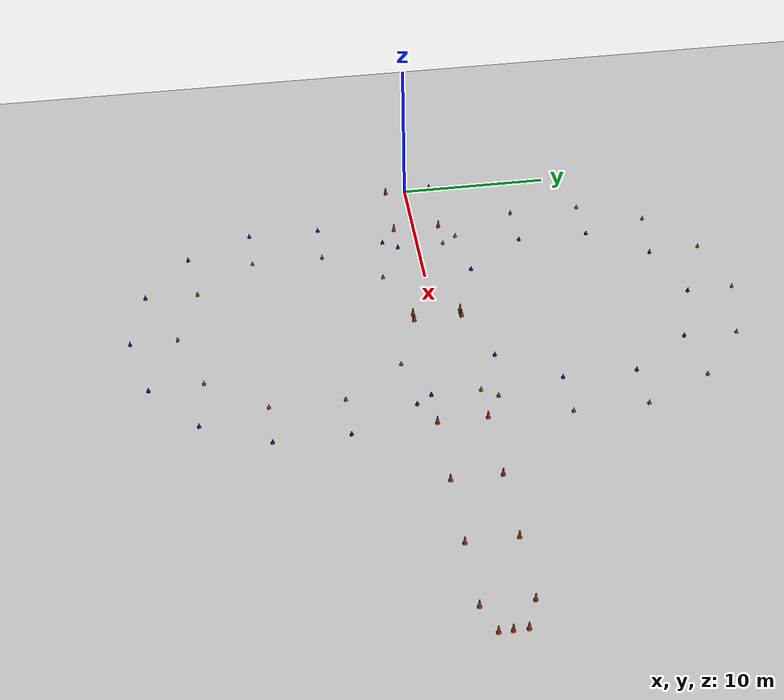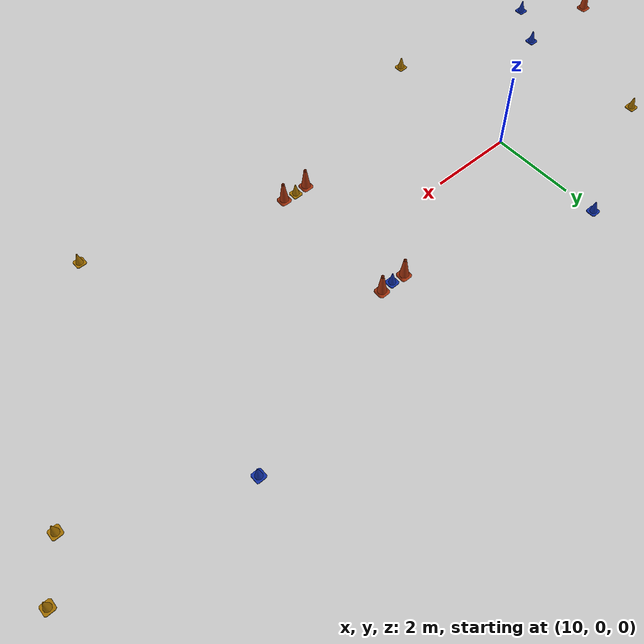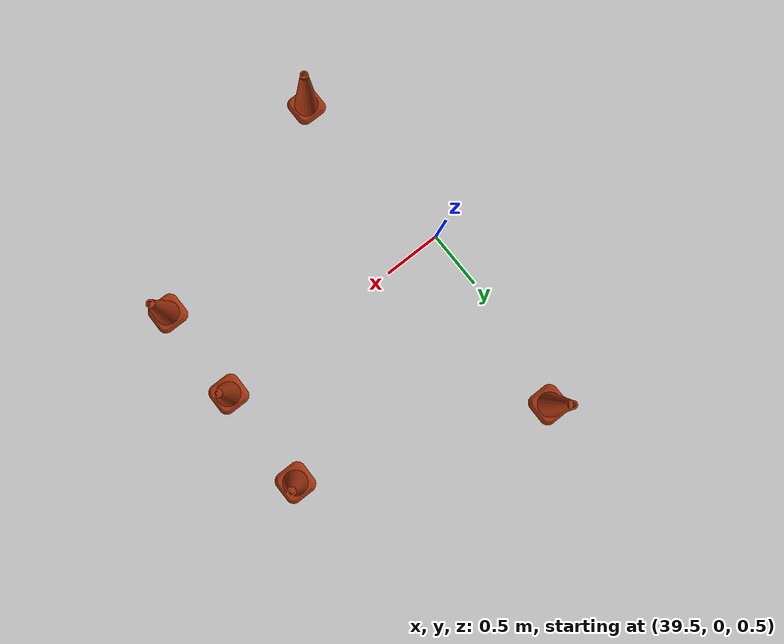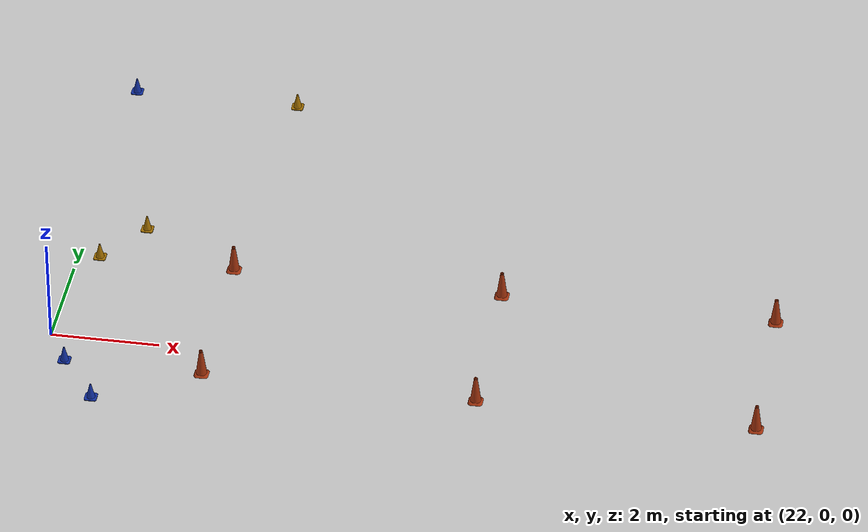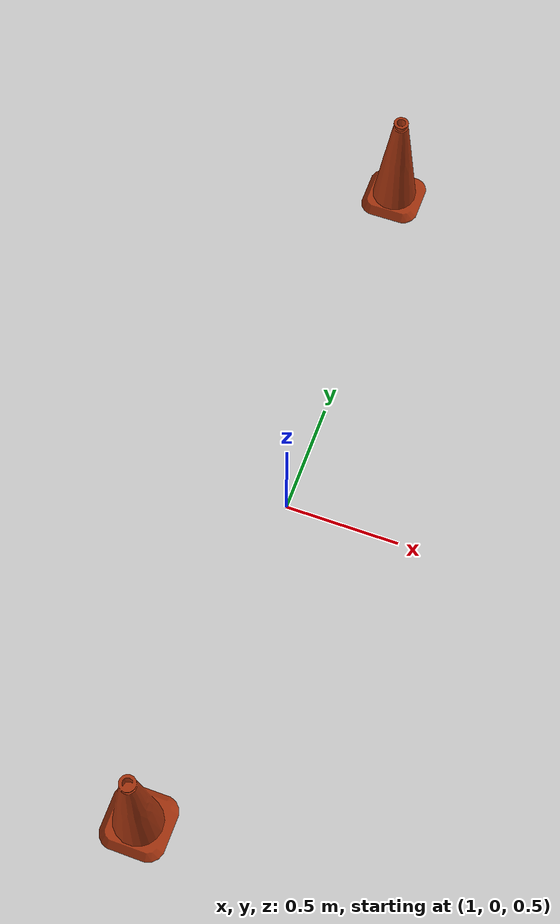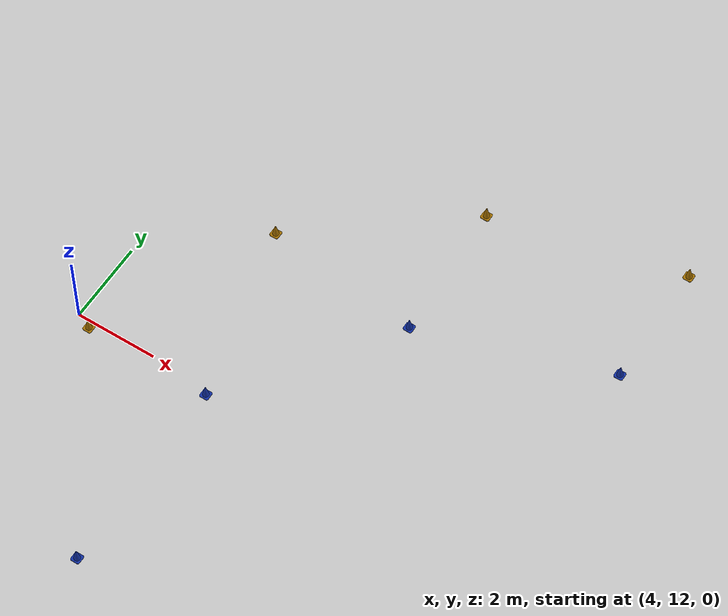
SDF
<?xml version="1.0" ?>
<sdf version="1.6">
  <world name="skidpad_track">
    <scene>
      <sky>
        <clouds>
          <speed>3</speed>
        </clouds>
      </sky>
      <ambient>1.0 1.0 1.0 1.0</ambient>
      <shadows>1</shadows>
    </scene>

    <include>
      <uri>model://ground_plane</uri>
    </include>

    <include>
      <uri>model://sun</uri>
    </include>

    <include>
      <uri>model://models/skidpad_track</uri>
      <name>track</name>
      <pose>0 0 0.5 0 0 0</pose>
    </include>

  </world>
</sdf>

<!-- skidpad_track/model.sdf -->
<sdf version='1.6'>
    <model name='skidpad_track'>

        <include>
            <pose>7.400000 -1.500000 0.15 0 0 0</pose>
            <uri>model://models/blue_cone</uri>
            <name>blue_cone_1</name>

            <covariance x="0.01" y="0.01" xy="0.0"/>

        </include>

        <include>
            <pose>22.600000 -1.500000 0.15 0 0 0</pose>
            <uri>model://models/blue_cone</uri>
            <name>blue_cone_2</name>

            <covariance x="0.01" y="0.01" xy="0.0"/>

        </include>

        <include>
            <pose>15.000000 -19.675000 0.15 0 0 0</pose>
            <uri>model://models/blue_cone</uri>
            <name>blue_cone_3</name>

            <covariance x="0.01" y="0.01" xy="0.0"/>

        </include>

        <include>
            <pose>19.599168 -18.625270 0.15 0 0 0</pose>
            <uri>model://models/blue_cone</uri>
            <name>blue_cone_4</name>

            <covariance x="0.01" y="0.01" xy="0.0"/>

        </include>

        <include>
            <pose>23.287414 -15.683992 0.15 0 0 0</pose>
            <uri>model://models/blue_cone</uri>
            <name>blue_cone_5</name>

            <covariance x="0.01" y="0.01" xy="0.0"/>

        </include>

        <include>
            <pose>25.334236 -11.433722 0.15 0 0 0</pose>
            <uri>model://models/blue_cone</uri>
            <name>blue_cone_6</name>

            <covariance x="0.01" y="0.01" xy="0.0"/>

        </include>

        <include>
            <pose>25.334236 -6.716278 0.15 0 0 0</pose>
            <uri>model://models/blue_cone</uri>
            <name>blue_cone_7</name>

            <covariance x="0.01" y="0.01" xy="0.0"/>

        </include>

        <include>
            <pose>23.287414 -2.466008 0.15 0 0 0</pose>
            <uri>model://models/blue_cone</uri>
            <name>blue_cone_8</name>

            <covariance x="0.01" y="0.01" xy="0.0"/>

        </include>

        <include>
            <pose>6.712586 -2.466008 0.15 0 0 0</pose>
            <uri>model://models/blue_cone</uri>
            <name>blue_cone_9</name>

            <covariance x="0.01" y="0.01" xy="0.0"/>

        </include>

        <include>
            <pose>4.665764 -6.716278 0.15 0 0 0</pose>
            <uri>model://models/blue_cone</uri>
            <name>blue_cone_10</name>

            <covariance x="0.01" y="0.01" xy="0.0"/>

        </include>

        <include>
            <pose>4.665764 -11.433722 0.15 0 0 0</pose>
            <uri>model://models/blue_cone</uri>
            <name>blue_cone_11</name>

            <covariance x="0.01" y="0.01" xy="0.0"/>

        </include>

        <include>
            <pose>6.712586 -15.683992 0.15 0 0 0</pose>
            <uri>model://models/blue_cone</uri>
            <name>blue_cone_12</name>

            <covariance x="0.01" y="0.01" xy="0.0"/>

        </include>

        <include>
            <pose>10.400832 -18.625270 0.15 0 0 0</pose>
            <uri>model://models/blue_cone</uri>
            <name>blue_cone_13</name>

            <covariance x="0.01" y="0.01" xy="0.0"/>

        </include>

        <include>
            <pose>15.000000 16.775000 0.15 0 0 0</pose>
            <uri>model://models/blue_cone</uri>
            <name>blue_cone_14</name>

            <covariance x="0.01" y="0.01" xy="0.0"/>

        </include>

        <include>
            <pose>19.467168 15.323529 0.15 0 0 0</pose>
            <uri>model://models/blue_cone</uri>
            <name>blue_cone_15</name>

            <covariance x="0.01" y="0.01" xy="0.0"/>

        </include>

        <include>
            <pose>22.228030 11.523529 0.15 0 0 0</pose>
            <uri>model://models/blue_cone</uri>
            <name>blue_cone_16</name>

            <covariance x="0.01" y="0.01" xy="0.0"/>

        </include>

        <include>
            <pose>22.228030 6.826471 0.15 0 0 0</pose>
            <uri>model://models/blue_cone</uri>
            <name>blue_cone_17</name>

            <covariance x="0.01" y="0.01" xy="0.0"/>

        </include>

        <include>
            <pose>19.467168 3.026471 0.15 0 0 0</pose>
            <uri>model://models/blue_cone</uri>
            <name>blue_cone_18</name>

            <covariance x="0.01" y="0.01" xy="0.0"/>

        </include>

        <include>
            <pose>15.000000 1.575000 0.15 0 0 0</pose>
            <uri>model://models/blue_cone</uri>
            <name>blue_cone_19</name>

            <covariance x="0.01" y="0.01" xy="0.0"/>

        </include>

        <include>
            <pose>10.532832 3.026471 0.15 0 0 0</pose>
            <uri>model://models/blue_cone</uri>
            <name>blue_cone_20</name>

            <covariance x="0.01" y="0.01" xy="0.0"/>

        </include>

        <include>
            <pose>7.771970 6.826471 0.15 0 0 0</pose>
            <uri>model://models/blue_cone</uri>
            <name>blue_cone_21</name>

            <covariance x="0.01" y="0.01" xy="0.0"/>

        </include>

        <include>
            <pose>7.771970 11.523529 0.15 0 0 0</pose>
            <uri>model://models/blue_cone</uri>
            <name>blue_cone_22</name>

            <covariance x="0.01" y="0.01" xy="0.0"/>

        </include>

        <include>
            <pose>10.532832 15.323529 0.15 0 0 0</pose>
            <uri>model://models/blue_cone</uri>
            <name>blue_cone_23</name>

            <covariance x="0.01" y="0.01" xy="0.0"/>

        </include>

        <include>
            <pose>7.400000 1.600000 0.15 0 0 0</pose>
            <uri>model://models/yellow_cone</uri>
            <name>yellow_cone_1</name>

            <covariance x="0.01" y="0.01" xy="0.0"/>

        </include>

        <include>
            <pose>22.600000 1.600000 0.15 0 0 0</pose>
            <uri>model://models/yellow_cone</uri>
            <name>yellow_cone_2</name>

            <covariance x="0.01" y="0.01" xy="0.0"/>

        </include>

        <include>
            <pose>15.000000 19.775000 0.15 0 0 0</pose>
            <uri>model://models/yellow_cone</uri>
            <name>yellow_cone_3</name>

            <covariance x="0.01" y="0.01" xy="0.0"/>

        </include>

        <include>
            <pose>19.599168 18.725270 0.15 0 0 0</pose>
            <uri>model://models/yellow_cone</uri>
            <name>yellow_cone_4</name>

            <covariance x="0.01" y="0.01" xy="0.0"/>

        </include>

        <include>
            <pose>23.287414 15.783992 0.15 0 0 0</pose>
            <uri>model://models/yellow_cone</uri>
            <name>yellow_cone_5</name>

            <covariance x="0.01" y="0.01" xy="0.0"/>

        </include>

        <include>
            <pose>25.334236 11.533722 0.15 0 0 0</pose>
            <uri>model://models/yellow_cone</uri>
            <name>yellow_cone_6</name>

            <covariance x="0.01" y="0.01" xy="0.0"/>

        </include>

        <include>
            <pose>25.334236 6.816278 0.15 0 0 0</pose>
            <uri>model://models/yellow_cone</uri>
            <name>yellow_cone_7</name>

            <covariance x="0.01" y="0.01" xy="0.0"/>

        </include>

        <include>
            <pose>23.287414 2.566008 0.15 0 0 0</pose>
            <uri>model://models/yellow_cone</uri>
            <name>yellow_cone_8</name>

            <covariance x="0.01" y="0.01" xy="0.0"/>

        </include>

        <include>
            <pose>6.712586 2.566008 0.15 0 0 0</pose>
            <uri>model://models/yellow_cone</uri>
            <name>yellow_cone_9</name>

            <covariance x="0.01" y="0.01" xy="0.0"/>

        </include>

        <include>
            <pose>4.665764 6.816278 0.15 0 0 0</pose>
            <uri>model://models/yellow_cone</uri>
            <name>yellow_cone_10</name>

            <covariance x="0.01" y="0.01" xy="0.0"/>

        </include>

        <include>
            <pose>4.665764 11.533722 0.15 0 0 0</pose>
            <uri>model://models/yellow_cone</uri>
            <name>yellow_cone_11</name>

            <covariance x="0.01" y="0.01" xy="0.0"/>

        </include>

        <include>
            <pose>6.712586 15.783992 0.15 0 0 0</pose>
            <uri>model://models/yellow_cone</uri>
            <name>yellow_cone_12</name>

            <covariance x="0.01" y="0.01" xy="0.0"/>

        </include>

        <include>
            <pose>10.400832 18.725270 0.15 0 0 0</pose>
            <uri>model://models/yellow_cone</uri>
            <name>yellow_cone_13</name>

            <covariance x="0.01" y="0.01" xy="0.0"/>

        </include>

        <include>
            <pose>15.000000 -1.475000 0.15 0 0 0</pose>
            <uri>model://models/yellow_cone</uri>
            <name>yellow_cone_14</name>

            <covariance x="0.01" y="0.01" xy="0.0"/>

        </include>

        <include>
            <pose>19.467168 -2.926471 0.15 0 0 0</pose>
            <uri>model://models/yellow_cone</uri>
            <name>yellow_cone_15</name>

            <covariance x="0.01" y="0.01" xy="0.0"/>

        </include>

        <include>
            <pose>22.228030 -6.726471 0.15 0 0 0</pose>
            <uri>model://models/yellow_cone</uri>
            <name>yellow_cone_16</name>

            <covariance x="0.01" y="0.01" xy="0.0"/>

        </include>

        <include>
            <pose>22.228030 -11.423529 0.15 0 0 0</pose>
            <uri>model://models/yellow_cone</uri>
            <name>yellow_cone_17</name>

            <covariance x="0.01" y="0.01" xy="0.0"/>

        </include>

        <include>
            <pose>19.467168 -15.223529 0.15 0 0 0</pose>
            <uri>model://models/yellow_cone</uri>
            <name>yellow_cone_18</name>

            <covariance x="0.01" y="0.01" xy="0.0"/>

        </include>

        <include>
            <pose>15.000000 -16.675000 0.15 0 0 0</pose>
            <uri>model://models/yellow_cone</uri>
            <name>yellow_cone_19</name>

            <covariance x="0.01" y="0.01" xy="0.0"/>

        </include>

        <include>
            <pose>10.532832 -15.223529 0.15 0 0 0</pose>
            <uri>model://models/yellow_cone</uri>
            <name>yellow_cone_20</name>

            <covariance x="0.01" y="0.01" xy="0.0"/>

        </include>

        <include>
            <pose>7.771970 -11.423529 0.15 0 0 0</pose>
            <uri>model://models/yellow_cone</uri>
            <name>yellow_cone_21</name>

            <covariance x="0.01" y="0.01" xy="0.0"/>

        </include>

        <include>
            <pose>7.771970 -6.726471 0.15 0 0 0</pose>
            <uri>model://models/yellow_cone</uri>
            <name>yellow_cone_22</name>

            <covariance x="0.01" y="0.01" xy="0.0"/>

        </include>

        <include>
            <pose>10.532832 -2.926471 0.15 0 0 0</pose>
            <uri>model://models/yellow_cone</uri>
            <name>yellow_cone_23</name>

            <covariance x="0.01" y="0.01" xy="0.0"/>

        </include>

        <include>
            <pose>15.300000 1.600000 0.15 0 0 0</pose>
            <uri>model://models/big_cone</uri>
            <name>big_cone_1</name>

            <covariance x="0.01" y="0.01" xy="0.0"/>

        </include>

        <include>
            <pose>15.300000 -1.500000 0.15 0 0 0</pose>
            <uri>model://models/big_cone</uri>
            <name>big_cone_2</name>

            <covariance x="0.01" y="0.01" xy="0.0"/>

        </include>

        <include>
            <pose>14.700000 1.600000 0.15 0 0 0</pose>
            <uri>model://models/big_cone</uri>
            <name>big_cone_3</name>

            <covariance x="0.01" y="0.01" xy="0.0"/>

        </include>

        <include>
            <pose>14.700000 -1.500000 0.15 0 0 0</pose>
            <uri>model://models/big_cone</uri>
            <name>big_cone_4</name>

            <covariance x="0.01" y="0.01" xy="0.0"/>

        </include>

        <include>
            <pose>0.950000 1.600000 0.15 0 0 0</pose>
            <uri>model://models/big_cone</uri>
            <name>big_cone_1</name>

            <covariance x="0.01" y="0.01" xy="0.0"/>

        </include>

        <include>
            <pose>5.400000 1.600000 0.15 0 0 0</pose>
            <uri>model://models/big_cone</uri>
            <name>big_cone_2</name>

            <covariance x="0.01" y="0.01" xy="0.0"/>

        </include>

        <include>
            <pose>25.100000 1.600000 0.15 0 0 0</pose>
            <uri>model://models/big_cone</uri>
            <name>big_cone_3</name>

            <covariance x="0.01" y="0.01" xy="0.0"/>

        </include>

        <include>
            <pose>30.050000 1.600000 0.15 0 0 0</pose>
            <uri>model://models/big_cone</uri>
            <name>big_cone_4</name>

            <covariance x="0.01" y="0.01" xy="0.0"/>

        </include>

        <include>
            <pose>35.050000 1.600000 0.15 0 0 0</pose>
            <uri>model://models/big_cone</uri>
            <name>big_cone_5</name>

            <covariance x="0.01" y="0.01" xy="0.0"/>

        </include>

        <include>
            <pose>39.693023 1.586047 0.15 0 0 0</pose>
            <uri>model://models/big_cone</uri>
            <name>big_cone_6</name>

            <covariance x="0.01" y="0.01" xy="0.0"/>

        </include>

        <include>
            <pose>41.600000 -0.000000 0.15 0 0 0</pose>
            <uri>model://models/big_cone</uri>
            <name>big_cone_7</name>

            <covariance x="0.01" y="0.01" xy="0.0"/>

        </include>

        <include>
            <pose>41.600000 0.850000 0.15 0 0 0</pose>
            <uri>model://models/big_cone</uri>
            <name>big_cone_8</name>

            <covariance x="0.01" y="0.01" xy="0.0"/>

        </include>

        <include>
            <pose>0.950000 -1.500000 0.15 0 0 0</pose>
            <uri>model://models/big_cone</uri>
            <name>big_cone_9</name>

            <covariance x="0.01" y="0.01" xy="0.0"/>

        </include>

        <include>
            <pose>5.400000 -1.500000 0.15 0 0 0</pose>
            <uri>model://models/big_cone</uri>
            <name>big_cone_10</name>

            <covariance x="0.01" y="0.01" xy="0.0"/>

        </include>

        <include>
            <pose>25.100000 -1.500000 0.15 0 0 0</pose>
            <uri>model://models/big_cone</uri>
            <name>big_cone_11</name>

            <covariance x="0.01" y="0.01" xy="0.0"/>

        </include>

        <include>
            <pose>30.050000 -1.500000 0.15 0 0 0</pose>
            <uri>model://models/big_cone</uri>
            <name>big_cone_12</name>

            <covariance x="0.01" y="0.01" xy="0.0"/>

        </include>

        <include>
            <pose>35.050000 -1.500000 0.15 0 0 0</pose>
            <uri>model://models/big_cone</uri>
            <name>big_cone_13</name>

            <covariance x="0.01" y="0.01" xy="0.0"/>

        </include>

        <include>
            <pose>39.693023 -1.486047 0.15 0 0 0</pose>
            <uri>model://models/big_cone</uri>
            <name>big_cone_14</name>

            <covariance x="0.01" y="0.01" xy="0.0"/>

        </include>

        <include>
            <pose>41.600000 -0.800000 0.15 0 0 0</pose>
            <uri>model://models/big_cone</uri>
            <name>big_cone_15</name>

            <covariance x="0.01" y="0.01" xy="0.0"/>

        </include>

        <static>0</static>
        <allow_auto_disable>1</allow_auto_disable>
    </model>
</sdf>

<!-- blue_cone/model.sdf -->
<sdf version='1.6'>
  <model name='blue_cone'>
    <link name='link'>
      <pose frame=''>0 0 0 0 0 0</pose>
      <inertial>
        <inertia>
          <ixx>0.0016</ixx>
          <ixy>0</ixy>
          <ixz>0</ixz>
          <iyy>0.0016</iyy>
          <iyz>0</iyz>
          <izz>0.0010</izz>
        </inertia>
        <mass>0.45</mass>
      </inertial>
      <visual name='visual'>
        <geometry>
          <mesh>
            <uri>model://meshes/cone_blue.dae</uri>
          </mesh>
        </geometry>
        <cast_shadows>1</cast_shadows>
      </visual>
      <collision name='collision'>
        <max_contacts>3</max_contacts>
        <geometry>
          <mesh>
            <uri>model://meshes/cone_blue.dae</uri>
          </mesh>
        </geometry>
      </collision>
    </link>
  </model>
</sdf>

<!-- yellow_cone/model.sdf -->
<sdf version='1.6'>
  <model name='yellow_cone'>
    <link name='link'>
      <pose frame=''>0 0 0 0 0 0</pose>
      <inertial>
        <inertia>
          <ixx>0.0016</ixx>
          <ixy>0</ixy>
          <ixz>0</ixz>
          <iyy>0.0016</iyy>
          <iyz>0</iyz>
          <izz>0.0010</izz>
        </inertia>
        <mass>0.45</mass>
      </inertial>
      <visual name='visual'>
        <geometry>
          <mesh>
            <uri>model://meshes/cone_yellow.dae</uri>
          </mesh>
        </geometry>
        <cast_shadows>1</cast_shadows>
      </visual>
      <collision name='collision'>
        <max_contacts>3</max_contacts>
        <geometry>
          <mesh>
            <uri>model://meshes/cone_yellow.dae</uri>
          </mesh>
        </geometry>
      </collision>
    </link>
  </model>
</sdf>

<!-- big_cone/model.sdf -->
<sdf version='1.6'>
  <model name='big_cone'>
    <link name='link'>
      <pose frame=''>0 0 0 0 0 0</pose>
      <inertial>
        <inertia>
          <ixx>0.0016</ixx>
          <ixy>0</ixy>
          <ixz>0</ixz>
          <iyy>0.0016</iyy>
          <iyz>0</iyz>
          <izz>0.0010</izz>
        </inertia>
        <mass>0.45</mass>
      </inertial>
      <visual name='visual'>
        <geometry>
          <mesh>
            <uri>model://meshes/cone_big.dae</uri>
          </mesh>
        </geometry>
        <cast_shadows>1</cast_shadows>
      </visual>
      <collision name='collision'>
        <max_contacts>3</max_contacts>
        <geometry>
          <mesh>
            <uri>model://meshes/cone_big.dae</uri>
          </mesh>
        </geometry>
      </collision>
    </link>
  </model>
</sdf>
